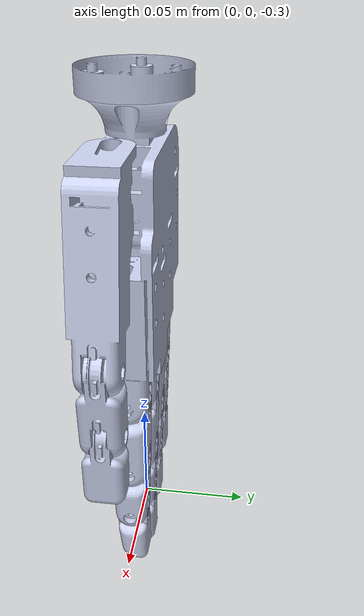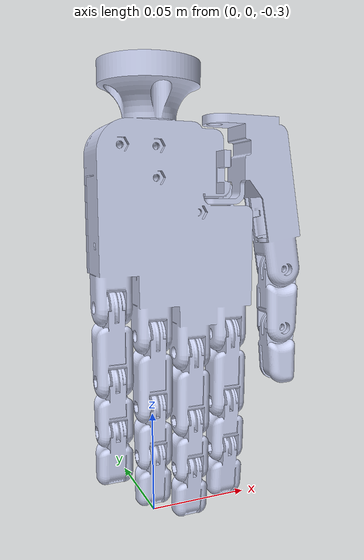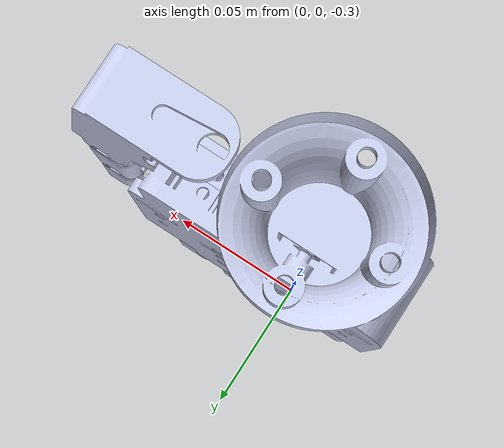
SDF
<?xml version="1.0"?>
<sdf version="1.7">
  <model name="Dextra_left">

    <link name="LeftWrist_link">
      <pose>0 0 0 0 -0 0</pose>
      <inertial>
        <mass>0.3</mass>
      </inertial>
      <visual name="LeftWrist_visual">
        <geometry>
          <mesh>
            <scale>0.001 0.001 0.001</scale>
            <uri>model://dextra_left/meshes/visual/LeftStaticLinks.dae</uri>
          </mesh>
        </geometry>
        <material>
          <ambient>0.792157 0.819608 0.933333 1</ambient>
          <diffuse>0.792157 0.819608 0.933333 1</diffuse>
          <specular>0.633726 0.655686 0.746667 1</specular>
        </material>
      </visual>
      <collision name="LeftWrist_collision">
        <geometry>
          <mesh>
            <scale>0.001 0.001 0.001</scale>
            <uri>model://dextra_left/meshes/collision/LeftStaticLinks.stl</uri>
          </mesh>
        </geometry>
        <max_contacts>2</max_contacts>
        <surface>
          <contact>
            <ode>
              <kp>1000000</kp>
              <kd>100</kd>
              <max_vel>0.001</max_vel>
              <min_depth>0.001</min_depth>
            </ode>
          </contact>
          <friction>
            <ode>
              <mu>1</mu>
              <mu2>1</mu2>
              <slip1>0</slip1>
              <slip2>0</slip2>
            </ode>
          </friction>
        </surface>
      </collision>
    </link>

    <link name="LeftThumbAbductor_link">
      <pose relative_to="LeftWrist_link">0.026 -0.0126 -0.112 -1.5708 0 0</pose>
      <inertial>
        <mass>0.1</mass>
      </inertial>
      <visual name="LeftThumbAbductor_visual">
        <geometry>
          <mesh>
            <scale>0.001 0.001 0.001</scale>
            <uri>model://dextra_common/meshes/visual/Abductor.dae</uri>
          </mesh>
        </geometry>
        <material>
          <ambient>0.792157 0.819608 0.933333 1</ambient>
          <diffuse>0.792157 0.819608 0.933333 1</diffuse>
          <specular>0.633726 0.655686 0.746667 1</specular>
        </material>
      </visual>
      <collision name="LeftThumbAbductor_collision">
        <geometry>
          <mesh>
            <scale>0.001 0.001 0.001</scale>
            <uri>model://dextra_common/meshes/collision/Abductor.stl</uri>
          </mesh>
        </geometry>
        <max_contacts>2</max_contacts>
        <surface>
          <contact>
            <ode>
              <kp>1000000</kp>
              <kd>100</kd>
              <max_vel>0.001</max_vel>
              <min_depth>0.001</min_depth>
            </ode>
          </contact>
          <friction>
            <ode>
              <mu>1</mu>
              <mu2>1</mu2>
              <slip1>0</slip1>
              <slip2>0</slip2>
            </ode>
          </friction>
        </surface>
      </collision>
    </link>

    <joint name="LeftThumbAbductor" type="revolute">
      <parent>LeftWrist_link</parent>
      <child>LeftThumbAbductor_link</child>
      <axis>
        <xyz>0 -1 0</xyz>
        <limit>
          <lower>-1.5708</lower>
          <upper>0.0</upper>
        </limit>
        <dynamics>
          <damping>0.001</damping>
          <friction>0.7</friction>
        </dynamics>
      </axis>
    </joint>

    <link name="LeftThumbProximal_link">
      <pose relative_to="LeftThumbAbductor_link">0.0406 0.0685 0.01775 1.5708 0 1.5708</pose>
      <inertial>
        <mass>0.1</mass>
      </inertial>
      <visual name="LeftThumbProximal_visual">
        <geometry>
          <mesh>
            <scale>0.001 0.001 0.001</scale>
            <uri>model://dextra_common/meshes/visual/ProximalThumb.dae</uri>
          </mesh>
        </geometry>
        <material>
          <ambient>0.792157 0.819608 0.933333 1</ambient>
          <diffuse>0.792157 0.819608 0.933333 1</diffuse>
          <specular>0.633726 0.655686 0.746667 1</specular>
        </material>
      </visual>
      <collision name="LeftThumbProximal_collision">
        <geometry>
          <mesh>
            <scale>0.001 0.001 0.001</scale>
            <uri>model://dextra_common/meshes/collision/ProximalThumb.stl</uri>
          </mesh>
        </geometry>
        <max_contacts>2</max_contacts>
        <surface>
          <contact>
            <ode>
              <kp>1000000</kp>
              <kd>100</kd>
              <max_vel>0.001</max_vel>
              <min_depth>0.001</min_depth>
            </ode>
          </contact>
          <friction>
            <ode>
              <mu>1</mu>
              <mu2>1</mu2>
              <slip1>0</slip1>
              <slip2>0</slip2>
            </ode>
          </friction>
        </surface>
      </collision>
    </link>

    <joint name="LeftThumbProximal" type="revolute">
      <parent>LeftThumbAbductor_link</parent>
      <child>LeftThumbProximal_link</child>
      <axis>
        <xyz>0 -1 0</xyz>
        <limit>
          <lower>-1.5708</lower>
          <upper>1.5708</upper>
        </limit>
        <dynamics>
          <damping>0.001</damping>
          <friction>0.7</friction>
        </dynamics>
      </axis>
    </joint>

    <link name="LeftThumbDistal_link">
      <pose relative_to="LeftThumbProximal_link">0.03 0 0 0 0 0</pose>
      <inertial>
        <mass>0.1</mass>
      </inertial>
      <visual name="LeftThumbDistal_visual">
        <geometry>
          <mesh>
            <scale>0.001 0.001 0.001</scale>
            <uri>model://dextra_common/meshes/visual/DistalThumb.dae</uri>
          </mesh>
        </geometry>
        <material>
          <ambient>0.792157 0.819608 0.933333 1</ambient>
          <diffuse>0.792157 0.819608 0.933333 1</diffuse>
          <specular>0.633726 0.655686 0.746667 1</specular>
        </material>
      </visual>
      <collision name="LeftThumbDistal_collision">
        <geometry>
          <mesh>
            <scale>0.001 0.001 0.001</scale>
            <uri>model://dextra_common/meshes/collision/DistalThumb.stl</uri>
          </mesh>
        </geometry>
        <max_contacts>2</max_contacts>
        <surface>
          <contact>
            <ode>
              <kp>1000000</kp>
              <kd>100</kd>
              <max_vel>0.001</max_vel>
              <min_depth>0.001</min_depth>
            </ode>
          </contact>
          <friction>
            <ode>
              <mu>1</mu>
              <mu2>1</mu2>
              <slip1>0</slip1>
              <slip2>0</slip2>
            </ode>
          </friction>
        </surface>
      </collision>
    </link>

    <joint name="LeftThumbDistal" type="revolute">
      <parent>LeftThumbProximal_link</parent>
      <child>LeftThumbDistal_link</child>
      <axis>
        <xyz>0 -1 0</xyz>
        <limit>
          <lower>-1.48353</lower>
          <upper>-0.122173</upper>
        </limit>
        <dynamics>
          <damping>0.001</damping>
          <friction>0.7</friction>
        </dynamics>
      </axis>
    </joint>

    <link name="LeftPinkyProximal_link">
      <pose relative_to="LeftWrist_link">-0.0275 0.001 -0.196 1.5708 1.5708 3.1416</pose>
      <inertial>
        <mass>0.1</mass>
      </inertial>
      <visual name="LeftPinkyProximal_visual">
        <geometry>
          <mesh>
            <scale>0.001 0.001 0.001</scale>
            <uri>model://dextra_common/meshes/visual/Proximal.dae</uri>
          </mesh>
        </geometry>
        <material>
          <ambient>0.792157 0.819608 0.933333 1</ambient>
          <diffuse>0.792157 0.819608 0.933333 1</diffuse>
          <specular>0.633726 0.655686 0.746667 1</specular>
        </material>
      </visual>
      <collision name="LeftPinkyProximal_collision">
        <geometry>
          <mesh>
            <scale>0.001 0.001 0.001</scale>
            <uri>model://dextra_common/meshes/collision/Proximal.stl</uri>
          </mesh>
        </geometry>
        <max_contacts>2</max_contacts>
        <surface>
          <contact>
            <ode>
              <kp>1000000</kp>
              <kd>100</kd>
              <max_vel>0.001</max_vel>
              <min_depth>0.001</min_depth>
            </ode>
          </contact>
          <friction>
            <ode>
              <mu>1</mu>
              <mu2>1</mu2>
              <slip1>0</slip1>
              <slip2>0</slip2>
            </ode>
          </friction>
        </surface>
      </collision>
    </link>

    <joint name="LeftPinkyProximal" type="revolute">
      <parent>LeftWrist_link</parent>
      <child>LeftPinkyProximal_link</child>
      <axis>
        <xyz>0 -1 0</xyz>
        <limit>
          <lower>-1.48353</lower>
          <upper>-0.122173</upper>
          <velocity>0.174533</velocity>
        </limit>
        <dynamics>
          <damping>0.001</damping>
          <friction>0.7</friction>
        </dynamics>
      </axis>
    </joint>

    <link name="LeftPinkyMiddle_link">
      <pose relative_to="LeftPinkyProximal_link">0.035 0 0 0 0 0</pose>
      <inertial>
        <mass>0.1</mass>
      </inertial>
      <visual name="LeftPinkyMiddle_visual">
        <geometry>
          <mesh>
            <scale>0.001 0.001 0.001</scale>
            <uri>model://dextra_common/meshes/visual/Middle.dae</uri>
          </mesh>
        </geometry>
        <material>
          <ambient>0.792157 0.819608 0.933333 1</ambient>
          <diffuse>0.792157 0.819608 0.933333 1</diffuse>
          <specular>0.633726 0.655686 0.746667 1</specular>
        </material>
      </visual>
      <collision name="LeftPinkyMiddle_collision">
        <geometry>
          <mesh>
            <scale>0.001 0.001 0.001</scale>
            <uri>model://dextra_common/meshes/collision/Middle.stl</uri>
          </mesh>
        </geometry>
        <max_contacts>2</max_contacts>
        <surface>
          <contact>
            <ode>
              <kp>1000000</kp>
              <kd>100</kd>
              <max_vel>0.001</max_vel>
              <min_depth>0.001</min_depth>
            </ode>
          </contact>
          <friction>
            <ode>
              <mu>1</mu>
              <mu2>1</mu2>
              <slip1>0</slip1>
              <slip2>0</slip2>
            </ode>
          </friction>
        </surface>
      </collision>
    </link>

    <joint name="LeftPinkyMiddle" type="revolute">
      <parent>LeftPinkyProximal_link</parent>
      <child>LeftPinkyMiddle_link</child>
      <axis>
        <xyz>0 -1 0</xyz>
        <limit>
          <lower>-1.48353</lower>
          <upper>-0.122173</upper>
          <velocity>0.174533</velocity>
        </limit>
        <dynamics>
          <damping>0.001</damping>
          <friction>0.7</friction>
        </dynamics>
      </axis>
    </joint>

    <link name="LeftPinkyDistal_link">
      <pose relative_to="LeftPinkyMiddle_link">0.025 0 0 0 0 0</pose>
      <inertial>
        <mass>0.1</mass>
      </inertial>
      <visual name="LeftPinkyDistal_visual">
        <geometry>
          <mesh>
            <scale>0.001 0.001 0.001</scale>
            <uri>model://dextra_common/meshes/visual/Distal.dae</uri>
          </mesh>
        </geometry>
        <material>
          <ambient>0.792157 0.819608 0.933333 1</ambient>
          <diffuse>0.792157 0.819608 0.933333 1</diffuse>
          <specular>0.633726 0.655686 0.746667 1</specular>
        </material>
      </visual>
      <collision name="LeftPinkyDistal_collision">
        <geometry>
          <mesh>
            <scale>0.001 0.001 0.001</scale>
            <uri>model://dextra_common/meshes/collision/Distal.stl</uri>
          </mesh>
        </geometry>
        <max_contacts>2</max_contacts>
        <surface>
          <contact>
            <ode>
              <kp>1000000</kp>
              <kd>100</kd>
              <max_vel>0.001</max_vel>
              <min_depth>0.001</min_depth>
            </ode>
          </contact>
          <friction>
            <ode>
              <mu>1</mu>
              <mu2>1</mu2>
              <slip1>0</slip1>
              <slip2>0</slip2>
            </ode>
          </friction>
        </surface>
      </collision>
    </link>

    <joint name="LeftPinkyDistal" type="revolute">
      <parent>LeftPinkyMiddle_link</parent>
      <child>LeftPinkyDistal_link</child>
      <axis>
        <xyz>0 -1 0</xyz>
        <limit>
          <lower>-1.48353</lower>
          <upper>-0.122173</upper>
          <velocity>0.174533</velocity>
        </limit>
        <dynamics>
          <damping>0.001</damping>
          <friction>0.7</friction>
        </dynamics>
      </axis>
    </joint>

    <link name="LeftRingProximal_link">
      <pose relative_to="LeftWrist_link">-0.00798 0.001 -0.211 1.5708 1.5708 3.1416</pose>
      <inertial>
        <mass>0.1</mass>
      </inertial>
      <visual name="LeftRingProximal_visual">
        <geometry>
          <mesh>
            <scale>0.001 0.001 0.001</scale>
            <uri>model://dextra_common/meshes/visual/Proximal.dae</uri>
          </mesh>
        </geometry>
        <material>
          <ambient>0.792157 0.819608 0.933333 1</ambient>
          <diffuse>0.792157 0.819608 0.933333 1</diffuse>
          <specular>0.633726 0.655686 0.746667 1</specular>
        </material>
      </visual>
      <collision name="LeftRingProximal_collision">
        <geometry>
          <mesh>
            <scale>0.001 0.001 0.001</scale>
            <uri>model://dextra_common/meshes/collision/Proximal.stl</uri>
          </mesh>
        </geometry>
        <max_contacts>2</max_contacts>
        <surface>
          <contact>
            <ode>
              <kp>1000000</kp>
              <kd>100</kd>
              <max_vel>0.001</max_vel>
              <min_depth>0.001</min_depth>
            </ode>
          </contact>
          <friction>
            <ode>
              <mu>1</mu>
              <mu2>1</mu2>
              <slip1>0</slip1>
              <slip2>0</slip2>
            </ode>
          </friction>
        </surface>
      </collision>
    </link>

    <joint name="LeftRingProximal" type="revolute">
      <parent>LeftWrist_link</parent>
      <child>LeftRingProximal_link</child>
      <axis>
        <xyz>0 -1 0</xyz>
        <limit>
          <lower>-1.48353</lower>
          <upper>-0.122173</upper>
          <velocity>0.174533</velocity>
        </limit>
        <dynamics>
          <damping>0.001</damping>
          <friction>0.7</friction>
        </dynamics>
      </axis>
    </joint>

    <link name="LeftRingMiddle_link">
      <pose relative_to="LeftRingProximal_link">0.035 0 0 0 0 0</pose>
      <inertial>
        <mass>0.1</mass>
      </inertial>
      <visual name="LeftRingMiddle_visual">
        <geometry>
          <mesh>
            <scale>0.001 0.001 0.001</scale>
            <uri>model://dextra_common/meshes/visual/Middle.dae</uri>
          </mesh>
        </geometry>
        <material>
          <ambient>0.792157 0.819608 0.933333 1</ambient>
          <diffuse>0.792157 0.819608 0.933333 1</diffuse>
          <specular>0.633726 0.655686 0.746667 1</specular>
        </material>
      </visual>
      <collision name="LeftRingMiddle_collision">
        <geometry>
          <mesh>
            <scale>0.001 0.001 0.001</scale>
            <uri>model://dextra_common/meshes/collision/Middle.stl</uri>
          </mesh>
        </geometry>
        <max_contacts>2</max_contacts>
        <surface>
          <contact>
            <ode>
              <kp>1000000</kp>
              <kd>100</kd>
              <max_vel>0.001</max_vel>
              <min_depth>0.001</min_depth>
            </ode>
          </contact>
          <friction>
            <ode>
              <mu>1</mu>
              <mu2>1</mu2>
              <slip1>0</slip1>
              <slip2>0</slip2>
            </ode>
          </friction>
        </surface>
      </collision>
    </link>

    <joint name="LeftRingMiddle" type="revolute">
      <parent>LeftRingProximal_link</parent>
      <child>LeftRingMiddle_link</child>
      <axis>
        <xyz>0 -1 0</xyz>
        <limit>
          <lower>-1.48353</lower>
          <upper>-0.122173</upper>
          <velocity>0.174533</velocity>
        </limit>
        <dynamics>
          <damping>0.001</damping>
          <friction>0.7</friction>
        </dynamics>
      </axis>
    </joint>

    <link name="LeftRingDistal_link">
      <pose relative_to="LeftRingMiddle_link">0.025 0 0 0 0 0</pose>
      <inertial>
        <mass>0.1</mass>
      </inertial>
      <visual name="LeftRingDistal_visual">
        <geometry>
          <mesh>
            <scale>0.001 0.001 0.001</scale>
            <uri>model://dextra_common/meshes/visual/Distal.dae</uri>
          </mesh>
        </geometry>
        <material>
          <ambient>0.792157 0.819608 0.933333 1</ambient>
          <diffuse>0.792157 0.819608 0.933333 1</diffuse>
          <specular>0.633726 0.655686 0.746667 1</specular>
        </material>
      </visual>
      <collision name="LeftRingDistal_collision">
        <geometry>
          <mesh>
            <scale>0.001 0.001 0.001</scale>
            <uri>model://dextra_common/meshes/collision/Distal.stl</uri>
          </mesh>
        </geometry>
        <max_contacts>2</max_contacts>
        <surface>
          <contact>
            <ode>
              <kp>1000000</kp>
              <kd>100</kd>
              <max_vel>0.001</max_vel>
              <min_depth>0.001</min_depth>
            </ode>
          </contact>
          <friction>
            <ode>
              <mu>1</mu>
              <mu2>1</mu2>
              <slip1>0</slip1>
              <slip2>0</slip2>
            </ode>
          </friction>
        </surface>
      </collision>
    </link>

    <joint name="LeftRingDistal" type="revolute">
      <parent>LeftRingMiddle_link</parent>
      <child>LeftRingDistal_link</child>
      <axis>
        <xyz>0 -1 0</xyz>
        <limit>
          <lower>-1.48353</lower>
          <upper>-0.122173</upper>
          <velocity>0.174533</velocity>
        </limit>
        <dynamics>
          <damping>0.001</damping>
          <friction>0.7</friction>
        </dynamics>
      </axis>
    </joint>

    <link name="LeftMiddleProximal_link">
      <pose relative_to="LeftWrist_link">0.01154 0.001 -0.221 1.5708 1.5708 3.1416</pose>
      <inertial>
        <mass>0.1</mass>
      </inertial>
      <visual name="LeftMiddleProximal_visual">
        <geometry>
          <mesh>
            <scale>0.001 0.001 0.001</scale>
            <uri>model://dextra_common/meshes/visual/Proximal.dae</uri>
          </mesh>
        </geometry>
        <material>
          <ambient>0.792157 0.819608 0.933333 1</ambient>
          <diffuse>0.792157 0.819608 0.933333 1</diffuse>
          <specular>0.633726 0.655686 0.746667 1</specular>
        </material>
      </visual>
      <collision name="LeftMiddleProximal_collision">
        <geometry>
          <mesh>
            <scale>0.001 0.001 0.001</scale>
            <uri>model://dextra_common/meshes/collision/Proximal.stl</uri>
          </mesh>
        </geometry>
        <max_contacts>2</max_contacts>
        <surface>
          <contact>
            <ode>
              <kp>1000000</kp>
              <kd>100</kd>
              <max_vel>0.001</max_vel>
              <min_depth>0.001</min_depth>
            </ode>
          </contact>
          <friction>
            <ode>
              <mu>1</mu>
              <mu2>1</mu2>
              <slip1>0</slip1>
              <slip2>0</slip2>
            </ode>
          </friction>
        </surface>
      </collision>
    </link>

    <joint name="LeftMiddleProximal" type="revolute">
      <parent>LeftWrist_link</parent>
      <child>LeftMiddleProximal_link</child>
      <axis>
        <xyz>0 -1 0</xyz>
        <limit>
          <lower>-1.48353</lower>
          <upper>-0.122173</upper>
          <velocity>0.174533</velocity>
        </limit>
        <dynamics>
          <damping>0.001</damping>
          <friction>0.7</friction>
        </dynamics>
      </axis>
    </joint>

    <link name="LeftMiddleMiddle_link">
      <pose relative_to="LeftMiddleProximal_link">0.035 0 0 0 0 0</pose>
      <inertial>
        <mass>0.1</mass>
      </inertial>
      <visual name="LeftMiddleMiddle_visual">
        <geometry>
          <mesh>
            <scale>0.001 0.001 0.001</scale>
            <uri>model://dextra_common/meshes/visual/Middle.dae</uri>
          </mesh>
        </geometry>
        <material>
          <ambient>0.792157 0.819608 0.933333 1</ambient>
          <diffuse>0.792157 0.819608 0.933333 1</diffuse>
          <specular>0.633726 0.655686 0.746667 1</specular>
        </material>
      </visual>
      <collision name="LeftMiddleMiddle_collision">
        <geometry>
          <mesh>
            <scale>0.001 0.001 0.001</scale>
            <uri>model://dextra_common/meshes/collision/Middle.stl</uri>
          </mesh>
        </geometry>
        <max_contacts>2</max_contacts>
        <surface>
          <contact>
            <ode>
              <kp>1000000</kp>
              <kd>100</kd>
              <max_vel>0.001</max_vel>
              <min_depth>0.001</min_depth>
            </ode>
          </contact>
          <friction>
            <ode>
              <mu>1</mu>
              <mu2>1</mu2>
              <slip1>0</slip1>
              <slip2>0</slip2>
            </ode>
          </friction>
        </surface>
      </collision>
    </link>

    <joint name="LeftMiddleMiddle" type="revolute">
      <parent>LeftMiddleProximal_link</parent>
      <child>LeftMiddleMiddle_link</child>
      <axis>
        <xyz>0 -1 0</xyz>
        <limit>
          <lower>-1.48353</lower>
          <upper>-0.122173</upper>
          <velocity>0.174533</velocity>
        </limit>
        <dynamics>
          <damping>0.001</damping>
          <friction>0.7</friction>
        </dynamics>
      </axis>
    </joint>

    <link name="LeftMiddleDistal_link">
      <pose relative_to="LeftMiddleMiddle_link">0.025 0 0 0 0 0</pose>
      <inertial>
        <mass>0.1</mass>
      </inertial>
      <visual name="LeftMiddleDistal_visual">
        <geometry>
          <mesh>
            <scale>0.001 0.001 0.001</scale>
            <uri>model://dextra_common/meshes/visual/Distal.dae</uri>
          </mesh>
        </geometry>
        <material>
          <ambient>0.792157 0.819608 0.933333 1</ambient>
          <diffuse>0.792157 0.819608 0.933333 1</diffuse>
          <specular>0.633726 0.655686 0.746667 1</specular>
        </material>
      </visual>
      <collision name="LeftMiddleDistal_collision">
        <geometry>
          <mesh>
            <scale>0.001 0.001 0.001</scale>
            <uri>model://dextra_common/meshes/collision/Distal.stl</uri>
          </mesh>
        </geometry>
        <max_contacts>2</max_contacts>
        <surface>
          <contact>
            <ode>
              <kp>1000000</kp>
              <kd>100</kd>
              <max_vel>0.001</max_vel>
              <min_depth>0.001</min_depth>
            </ode>
          </contact>
          <friction>
            <ode>
              <mu>1</mu>
              <mu2>1</mu2>
              <slip1>0</slip1>
              <slip2>0</slip2>
            </ode>
          </friction>
        </surface>
      </collision>
    </link>

    <joint name="LeftMiddleDistal" type="revolute">
      <parent>LeftMiddleMiddle_link</parent>
      <child>LeftMiddleDistal_link</child>
      <axis>
        <xyz>0 -1 0</xyz>
        <limit>
          <lower>-1.48353</lower>
          <upper>-0.122173</upper>
          <velocity>0.174533</velocity>
        </limit>
        <dynamics>
          <damping>0.001</damping>
          <friction>0.7</friction>
        </dynamics>
      </axis>
    </joint>

    <link name="LeftIndexProximal_link">
      <pose relative_to="LeftWrist_link">0.03106 0.001 -0.213 1.5708 1.5708 3.1416</pose>
      <inertial>
        <mass>0.1</mass>
      </inertial>
      <visual name="LeftIndexProximal_visual">
        <geometry>
          <mesh>
            <scale>0.001 0.001 0.001</scale>
            <uri>model://dextra_common/meshes/visual/Proximal.dae</uri>
          </mesh>
        </geometry>
        <material>
          <ambient>0.792157 0.819608 0.933333 1</ambient>
          <diffuse>0.792157 0.819608 0.933333 1</diffuse>
          <specular>0.633726 0.655686 0.746667 1</specular>
        </material>
      </visual>
      <collision name="LeftIndexProximal_collision">
        <geometry>
          <mesh>
            <scale>0.001 0.001 0.001</scale>
            <uri>model://dextra_common/meshes/collision/Proximal.stl</uri>
          </mesh>
        </geometry>
        <max_contacts>2</max_contacts>
        <surface>
          <contact>
            <ode>
              <kp>1000000</kp>
              <kd>100</kd>
              <max_vel>0.001</max_vel>
              <min_depth>0.001</min_depth>
            </ode>
          </contact>
          <friction>
            <ode>
              <mu>1</mu>
              <mu2>1</mu2>
              <slip1>0</slip1>
              <slip2>0</slip2>
            </ode>
          </friction>
        </surface>
      </collision>
    </link>

    <joint name="LeftIndexProximal" type="revolute">
      <parent>LeftWrist_link</parent>
      <child>LeftIndexProximal_link</child>
      <axis>
        <xyz>0 -1 0</xyz>
        <limit>
          <lower>-1.48353</lower>
          <upper>-0.122173</upper>
          <velocity>0.174533</velocity>
        </limit>
        <dynamics>
          <damping>0.001</damping>
          <friction>0.7</friction>
        </dynamics>
      </axis>
    </joint>

    <link name="LeftIndexMiddle_link">
      <pose relative_to="LeftIndexProximal_link">0.035 0 0 0 0 0</pose>
      <inertial>
        <mass>0.1</mass>
      </inertial>
      <visual name="LeftIndexMiddle_visual">
        <geometry>
          <mesh>
            <scale>0.001 0.001 0.001</scale>
            <uri>model://dextra_common/meshes/visual/Middle.dae</uri>
          </mesh>
        </geometry>
        <material>
          <ambient>0.792157 0.819608 0.933333 1</ambient>
          <diffuse>0.792157 0.819608 0.933333 1</diffuse>
          <specular>0.633726 0.655686 0.746667 1</specular>
        </material>
      </visual>
      <collision name="LeftIndexMiddle_collision">
        <geometry>
          <mesh>
            <scale>0.001 0.001 0.001</scale>
            <uri>model://dextra_common/meshes/collision/Middle.stl</uri>
          </mesh>
        </geometry>
        <max_contacts>2</max_contacts>
        <surface>
          <contact>
            <ode>
              <kp>1000000</kp>
              <kd>100</kd>
              <max_vel>0.001</max_vel>
              <min_depth>0.001</min_depth>
            </ode>
          </contact>
          <friction>
            <ode>
              <mu>1</mu>
              <mu2>1</mu2>
              <slip1>0</slip1>
              <slip2>0</slip2>
            </ode>
          </friction>
        </surface>
      </collision>
    </link>

    <joint name="LeftIndexMiddle" type="revolute">
      <parent>LeftIndexProximal_link</parent>
      <child>LeftIndexMiddle_link</child>
      <axis>
        <xyz>0 -1 0</xyz>
        <limit>
          <lower>-1.48353</lower>
          <upper>-0.122173</upper>
          <velocity>0.174533</velocity>
        </limit>
        <dynamics>
          <damping>0.001</damping>
          <friction>0.7</friction>
        </dynamics>
      </axis>
    </joint>

    <link name="LeftIndexDistal_link">
      <pose relative_to="LeftIndexMiddle_link">0.025 0 0 0 0 0</pose>
      <inertial>
        <mass>0.1</mass>
      </inertial>
      <visual name="LeftIndexDistal_visual">
        <geometry>
          <mesh>
            <scale>0.001 0.001 0.001</scale>
            <uri>model://dextra_common/meshes/visual/Distal.dae</uri>
          </mesh>
        </geometry>
        <material>
          <ambient>0.792157 0.819608 0.933333 1</ambient>
          <diffuse>0.792157 0.819608 0.933333 1</diffuse>
          <specular>0.633726 0.655686 0.746667 1</specular>
        </material>
      </visual>
      <collision name="LeftIndexDistal_collision">
        <geometry>
          <mesh>
            <scale>0.001 0.001 0.001</scale>
            <uri>model://dextra_common/meshes/collision/Distal.stl</uri>
          </mesh>
        </geometry>
        <max_contacts>2</max_contacts>
        <surface>
          <contact>
            <ode>
              <kp>1000000</kp>
              <kd>100</kd>
              <max_vel>0.001</max_vel>
              <min_depth>0.001</min_depth>
            </ode>
          </contact>
          <friction>
            <ode>
              <mu>1</mu>
              <mu2>1</mu2>
              <slip1>0</slip1>
              <slip2>0</slip2>
            </ode>
          </friction>
        </surface>
      </collision>
    </link>

    <joint name="LeftIndexDistal" type="revolute">
      <parent>LeftIndexMiddle_link</parent>
      <child>LeftIndexDistal_link</child>
      <axis>
        <xyz>0 -1 0</xyz>
        <limit>
          <lower>-1.48353</lower>
          <upper>-0.122173</upper>
          <velocity>0.174533</velocity>
        </limit>
        <dynamics>
          <damping>0.001</damping>
          <friction>0.7</friction>
        </dynamics>
      </axis>
    </joint>

    <plugin name="gzyarp::ControlBoard" filename="gz-sim-yarp-controlboard-system">
      <yarpConfigurationFile>model://dextra_left/conf/gazebo_dextra_left.ini</yarpConfigurationFile>
    </plugin>

    <plugin name="gzyarp::RobotInterface" filename="gz-sim-yarp-robotinterface-system">
      <yarpRobotInterfaceConfigurationFile>model://dextra_left/conf/dextra_left_nws_yarp.xml</yarpRobotInterfaceConfigurationFile>
    </plugin>

    <plugin name="gzyarp::RobotInterface" filename="gz-sim-yarp-robotinterface-system">
      <yarpRobotInterfaceConfigurationFile>model://dextra_left/conf/dextra_left_nws_ros2.xml</yarpRobotInterfaceConfigurationFile>
    </plugin>

  </model>
</sdf>
